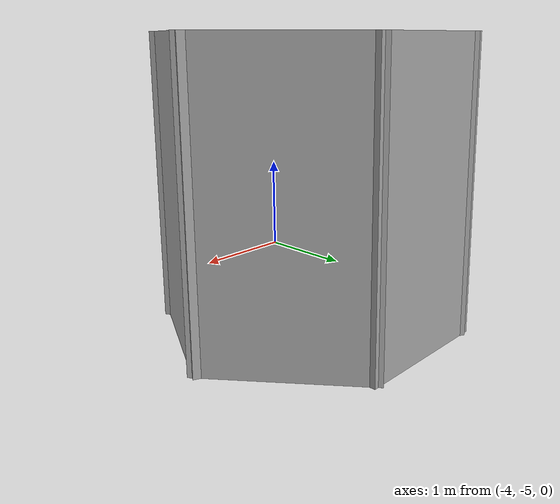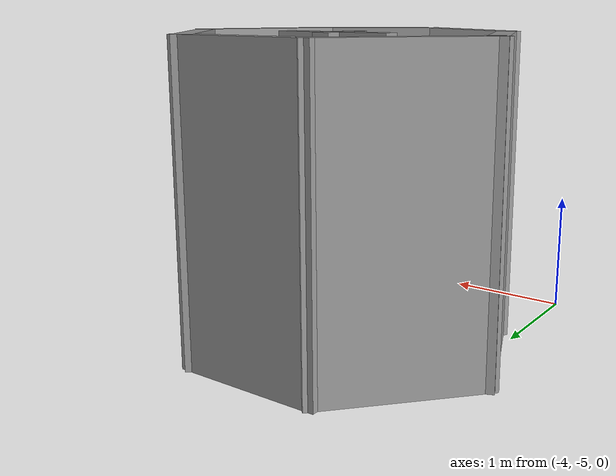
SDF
<?xml version='1.0'?>
<sdf version='1.7'>
  <model name='levelb'>
    <pose>-2.16822 -2.35242 0 0 -0 0</pose>
    <link name='Wall_138'>
      <collision name='Wall_138_Collision'>
        <geometry>
          <box>
            <size>1.25 0.15 2.5</size>
          </box>
        </geometry>
        <pose>0 0 1.25 0 -0 0</pose>
      </collision>
      <visual name='Wall_138_Visual'>
        <pose>0 0 1.25 0 -0 0</pose>
        <geometry>
          <box>
            <size>1.25 0.15 2.5</size>
          </box>
        </geometry>
        <material>
          <script>
            <uri>file://media/materials/scripts/gazebo.material</uri>
            <name>Gazebo/Grey</name>
          </script>
          <ambient>1 1 1 1</ambient>
        </material>
        <meta>
          <layer>0</layer>
        </meta>
      </visual>
      <pose>-1.18511 -1.97496 0 0 -0 -0.523599</pose>
    </link>
    <link name='Wall_144'>
      <collision name='Wall_144_Collision'>
        <geometry>
          <box>
            <size>1.10529 0.15 2.5</size>
          </box>
        </geometry>
        <pose>0 0 1.25 0 -0 0</pose>
      </collision>
      <visual name='Wall_144_Visual'>
        <pose>0 0 1.25 0 -0 0</pose>
        <geometry>
          <box>
            <size>1.10529 0.15 2.5</size>
          </box>
        </geometry>
        <material>
          <script>
            <uri>file://media/materials/scripts/gazebo.material</uri>
            <name>Gazebo/Grey</name>
          </script>
          <ambient>1 1 1 1</ambient>
        </material>
        <meta>
          <layer>0</layer>
        </meta>
      </visual>
      <pose>-0.278591 -2.04244 0 0 -0 0.449461</pose>
    </link>
    <link name='Wall_145'>
      <collision name='Wall_145_Collision'>
        <geometry>
          <box>
            <size>1.31918 0.15 2.5</size>
          </box>
        </geometry>
        <pose>0 0 1.25 0 -0 0</pose>
      </collision>
      <visual name='Wall_145_Visual'>
        <pose>0 0 1.25 0 -0 0</pose>
        <geometry>
          <box>
            <size>1.31918 0.15 2.5</size>
          </box>
        </geometry>
        <material>
          <script>
            <uri>file://media/materials/scripts/gazebo.material</uri>
            <name>Gazebo/Grey</name>
          </script>
          <ambient>1 1 1 1</ambient>
        </material>
        <meta>
          <layer>0</layer>
        </meta>
      </visual>
      <pose>0.406729 -1.30142 0 0 -0 1.10973</pose>
    </link>
    <link name='Wall_146'>
      <collision name='Wall_146_Collision'>
        <geometry>
          <box>
            <size>1.44468 0.15 2.5</size>
          </box>
        </geometry>
        <pose>0 0 1.25 0 -0 0</pose>
      </collision>
      <visual name='Wall_146_Visual'>
        <pose>0 0 1.25 0 -0 0</pose>
        <geometry>
          <box>
            <size>1.44468 0.15 2.5</size>
          </box>
        </geometry>
        <material>
          <script>
            <uri>file://media/materials/scripts/gazebo.material</uri>
            <name>Gazebo/Grey</name>
          </script>
          <ambient>1 1 1 1</ambient>
        </material>
        <meta>
          <layer>0</layer>
        </meta>
      </visual>
      <pose>0.280953 -0.271775 0 0 -0 2.219</pose>
    </link>
    <link name='Wall_149'>
      <collision name='Wall_149_Collision'>
        <geometry>
          <box>
            <size>1.23414 0.15 2.5</size>
          </box>
        </geometry>
        <pose>0 0 1.25 0 -0 0</pose>
      </collision>
      <visual name='Wall_149_Visual'>
        <pose>0 0 1.25 0 -0 0</pose>
        <geometry>
          <box>
            <size>1.23414 0.15 2.5</size>
          </box>
        </geometry>
        <material>
          <script>
            <uri>file://media/materials/scripts/gazebo.material</uri>
            <name>Gazebo/Grey</name>
          </script>
          <ambient>1 1 1 1</ambient>
        </material>
        <meta>
          <layer>0</layer>
        </meta>
      </visual>
      <pose>-1.86185 -1.19631 0 0 -0 1.94952</pose>
    </link>
    <link name='Wall_150'>
      <collision name='Wall_150_Collision'>
        <geometry>
          <box>
            <size>1.41664 0.15 2.5</size>
          </box>
        </geometry>
        <pose>0 0 1.25 0 -0 0</pose>
      </collision>
      <visual name='Wall_150_Visual'>
        <pose>0 0 1.25 0 -0 0</pose>
        <geometry>
          <box>
            <size>1.41664 0.15 2.5</size>
          </box>
        </geometry>
        <material>
          <script>
            <uri>file://media/materials/scripts/gazebo.material</uri>
            <name>Gazebo/Grey</name>
          </script>
          <ambient>1 1 1 1</ambient>
        </material>
        <meta>
          <layer>0</layer>
        </meta>
      </visual>
      <pose>-1.63608 -0.229162 0 0 -0 0.832599</pose>
    </link>
    <link name='Wall_151'>
      <collision name='Wall_151_Collision'>
        <geometry>
          <box>
            <size>1.25 0.15 2.5</size>
          </box>
        </geometry>
        <pose>0 0 1.25 0 -0 0</pose>
      </collision>
      <visual name='Wall_151_Visual'>
        <pose>0 0 1.25 0 -0 0</pose>
        <geometry>
          <box>
            <size>1.25 0.15 2.5</size>
          </box>
        </geometry>
        <material>
          <script>
            <uri>file://media/materials/scripts/gazebo.material</uri>
            <name>Gazebo/Grey</name>
          </script>
          <ambient>1 1 1 1</ambient>
        </material>
        <meta>
          <layer>0</layer>
        </meta>
      </visual>
      <pose>-0.65988 0.244267 0 0 -0 0</pose>
    </link>
    <link name='Wall_153'>
      <collision name='Wall_153_Collision'>
        <geometry>
          <box>
            <size>0.5 0.15 2.5</size>
          </box>
        </geometry>
        <pose>0 0 1.25 0 -0 0</pose>
      </collision>
      <visual name='Wall_153_Visual'>
        <pose>0 0 1.25 0 -0 0</pose>
        <geometry>
          <box>
            <size>0.5 0.15 2.5</size>
          </box>
        </geometry>
        <material>
          <script>
            <uri>file://media/materials/scripts/gazebo.material</uri>
            <name>Gazebo/Grey</name>
          </script>
          <ambient>1 1 1 1</ambient>
        </material>
        <meta>
          <layer>0</layer>
        </meta>
      </visual>
      <pose>-0.682145 -0.83615 0 0 -0 -1.5708</pose>
    </link>
    <link name='Wall_155'>
      <collision name='Wall_155_Collision'>
        <geometry>
          <box>
            <size>1 0.15 2.5</size>
          </box>
        </geometry>
        <pose>0 0 1.25 0 -0 0</pose>
      </collision>
      <visual name='Wall_155_Visual'>
        <pose>0 0 1.25 0 -0 0</pose>
        <geometry>
          <box>
            <size>1 0.15 2.5</size>
          </box>
        </geometry>
        <material>
          <script>
            <uri>file://media/materials/scripts/gazebo.material</uri>
            <name>Gazebo/Grey</name>
          </script>
          <ambient>1 1 1 1</ambient>
        </material>
        <meta>
          <layer>0</layer>
        </meta>
      </visual>
      <pose>-0.674774 -0.795388 0 0 -0 0</pose>
    </link>
    <static>1</static>
  </model>
</sdf>
